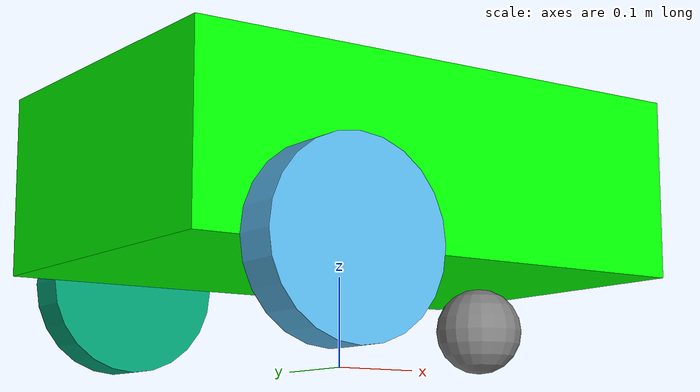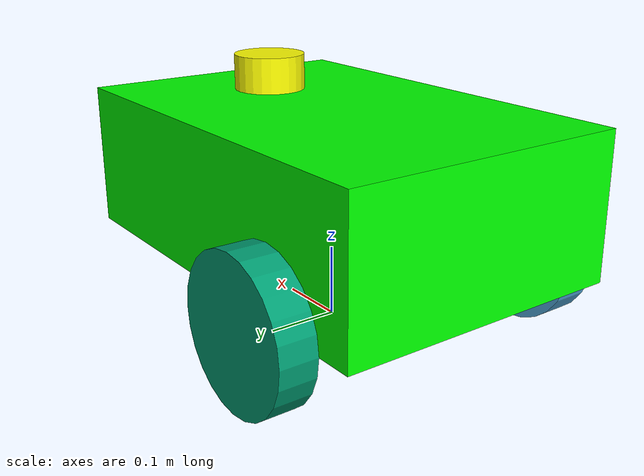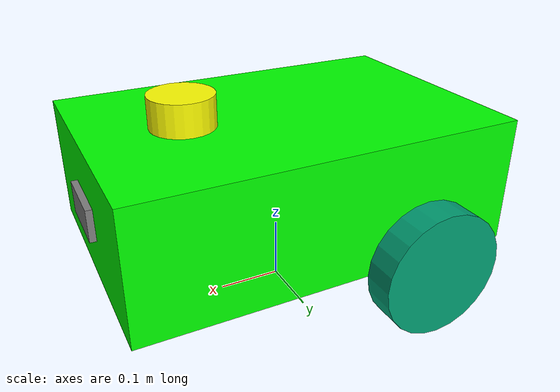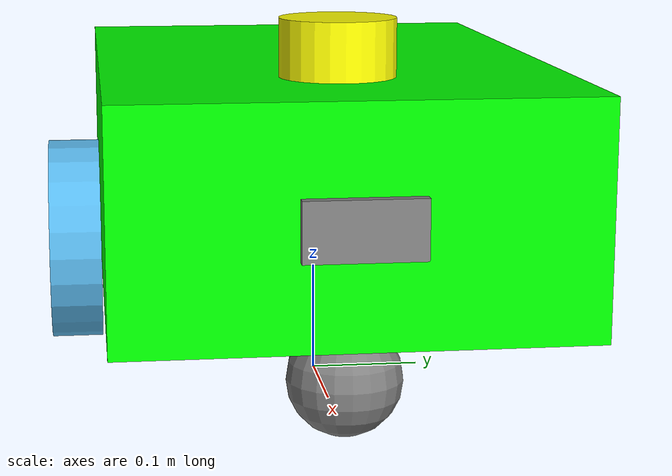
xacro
<?xml version="1.0"?>
<robot name="my_robot" xmlns:xacro="http://www.ros.org/wiki/xacro">

    <xacro:include filename="common_properties.xacro" />
    <xacro:include filename="mobile_base.xacro" />
    <xacro:include filename="mobile_base_gazebo.xacro" />
    <xacro:include filename="camera.xacro" />
    <xacro:include filename="lidar.xacro" />

</robot>

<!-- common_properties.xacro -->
<robot xmlns:xacro="http://www.ros.org/wiki/xacro">

    <material name="green">
        <color rgba="0 1 0 1" />
    </material>
    <material name="grey">
        <color rgba="0.5 0.5 0.5" />
    </material>
    <material name="orange">
        <color rgba="1 0.6 0 1" />
    </material>
    <material name="yellow">
        <color rgba="1 1 0 1" />
    </material>

    <xacro:macro name="box_inertia" params="m x y z o_xyz o_rpy">
        <inertial>
            <mass value="${m}" />
            <origin xyz="${o_xyz}" rpy="${o_rpy}" />
            <inertia ixx="${m*(y*y+z*z)/12}" ixy="0" ixz="0"
                     iyy="${m*(x*x+z*z)/12}" iyz="0"
                     izz="${m*(y*y+x*x)/12}" />
        </inertial>
    </xacro:macro>

    <xacro:macro name="cylinder_inertia" params="m r h o_xyz o_rpy">
        <inertial>
            <mass value="${m}" />
            <origin xyz="${o_xyz}" rpy="${o_rpy}" />
            <inertia ixx="${m*(3*r*r+h*h)/12}" ixy="0" ixz="0"
                     iyy="${m*(3*r*r+h*h)/12}" iyz="0"
                     izz="${m*r*r/2}" />
        </inertial>
    </xacro:macro>

    <xacro:macro name="sphere_inertia" params="m r o_xyz o_rpy">
        <inertial>
            <mass value="${m}" />
            <origin xyz="${o_xyz}" rpy="${o_rpy}" />
            <inertia ixx="${0.4*m*r*r}" ixy="0" ixz="0"
                     iyy="${0.4*m*r*r}" iyz="0"
                     izz="${0.4*m*r*r}" />
        </inertial>
    </xacro:macro>

</robot>

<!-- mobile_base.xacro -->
<robot xmlns:xacro="http://www.ros.org/wiki/xacro">
    <xacro:property name="base_length" value="0.6" />
    <xacro:property name="base_width" value="0.4" />
    <xacro:property name="base_height" value="0.2" />
    <xacro:property name="wheel_radius" value="0.1" />
    <xacro:property name="wheel_length" value="0.05" />

    <xacro:macro name="wheel_link" params="prefix">
        <link name="${prefix}_wheel_link">
            <visual>
                <geometry>
                    <cylinder radius="${wheel_radius}" length="${wheel_length}" />
                </geometry>
                <origin xyz="0 0 0" rpy="${pi / 2.0} 0 0" />
            </visual>
            <collision>
                <geometry>
                    <sphere radius="${wheel_radius}"/>
                </geometry>
                <origin xyz="0 0 0" rpy="0 0 0" />
            </collision>
            <xacro:cylinder_inertia m="1.0" r="${wheel_radius}" h="${wheel_length}"
                                    o_xyz="0 0 0" o_rpy="${pi / 2.0} 0 0" />
        </link>
    </xacro:macro>

    <link name="base_link">
        <visual>
            <geometry>
                <box size="${base_length} ${base_width} ${base_height}" />
            </geometry>
            <origin xyz="0 0 ${base_height / 2.0}" rpy="0 0 0" />
            <material name="green" />
        </visual>
        <collision>
            <geometry>
                <box size="${base_length} ${base_width} ${base_height}" />
            </geometry>
            <origin xyz="0 0 ${base_height / 2.0}" rpy="0 0 0" />
        </collision>
        <xacro:box_inertia m="5.0" x="${base_length}" y="${base_width}" z="${base_height}"
                           o_xyz="0 0 ${base_height / 2.0}" o_rpy="0 0 0" />
    </link>

    <xacro:wheel_link prefix="right" />
    <xacro:wheel_link prefix="left" />

    <link name="caster_wheel">
        <visual>
            <geometry>
                <sphere radius="${wheel_radius / 2.0}" />
            </geometry>
            <origin xyz="0 0 0" rpy="0 0 0" />
            <material name="grey" />
        </visual>
        <collision>
            <geometry>
                <sphere radius="${wheel_radius / 2.0}" />
            </geometry>
            <origin xyz="0 0 0" rpy="0 0 0" />
        </collision>
        <xacro:sphere_inertia m="0.5" r="${wheel_radius/2}" o_xyz="0 0 0" o_rpy="0 0 0" />
    </link>

    <link name="base_footprint" />

    <joint name="base_right_wheel_joint" type="continuous">
        <parent link="base_link" />
        <child link="right_wheel_link" />
        <origin xyz="${-base_length / 4.0} ${-(base_width + wheel_length) / 2.0} 0" rpy="0 0 0"/>
        <axis xyz="0 1 0" />
    </joint>
    <joint name="base_left_wheel_joint" type="continuous">
        <parent link="base_link" />
        <child link="left_wheel_link" />
        <origin xyz="${-base_length / 4.0} ${(base_width + wheel_length) / 2.0} 0" rpy="0 0 0"/>
        <axis xyz="0 1 0" />
    </joint>
    <joint name="base_caster_wheel_joint" type="fixed">
        <parent link="base_link" />
        <child link="caster_wheel" />
        <origin xyz="${base_length / 3.0} 0 ${-wheel_radius / 2.0}" rpy="0 0 0"/>
    </joint>
    <joint name="base_joint" type="fixed">
        <parent link="base_footprint" />
        <child link="base_link" />
        <origin xyz="0 0 ${wheel_radius}" />
    </joint>

</robot>

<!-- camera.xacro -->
<robot xmlns:xacro="http://www.ros.org/wiki/xacro">

    <xacro:property name="camera_length" value="0.01" />
    <xacro:property name="camera_width" value="0.1" />
    <xacro:property name="camera_height" value="0.05" />

    <link name="camera_link">
        <visual>
            <geometry>
                <box size="${camera_length} ${camera_width} ${camera_height}" />
            </geometry>
            <material name="grey" />
        </visual>
        <collision>
            <geometry>
                <box size="${camera_length} ${camera_width} ${camera_height}" />
            </geometry>
        </collision>
        <xacro:box_inertia m="0.1" x="${camera_length}" y="${camera_width}" z="${camera_height}"
                           o_xyz="0 0 0" o_rpy="0 0 0"/>
    </link>

    <joint name="base_camera_joint" type="fixed">
        <parent link="base_link" />
        <child link="camera_link" />
        <origin xyz="${(base_length + camera_length) / 2} 0 ${base_height/2}" rpy="0 0 0" />
    </joint>

    <link name="camera_link_optical" />

    <joint name="camera_optical_joint" type="fixed">
        <origin xyz="0 0 0" rpy="${-pi/2} 0 ${-pi/2}"/>
        <parent link="camera_link"/>
        <child link="camera_link_optical"/>
    </joint>

    <gazebo reference="camera_link">
        <sensor name="camera" type="camera">
            <camera>
                <horizontal_fov>1.3962634</horizontal_fov>
                <image>
                    <width>640</width>
                    <height>480</height>
                    <format>R8G8B8</format>
                </image>
                <clip>
                    <near>0.1</near>
                    <far>15</far>
                </clip>
                <noise>
                    <type>gaussian</type>
                    <mean>0.0</mean>
                    <stddev>0.007</stddev>
                </noise>
                <optical_frame_id>camera_link_optical</optical_frame_id>
                <camera_info_topic>camera/camera_info</camera_info_topic>
            </camera>
            <always_on>1</always_on>
            <update_rate>20</update_rate>
            <visualize>true</visualize>
            <topic>camera/image_raw</topic>
        </sensor>
    </gazebo>

</robot>

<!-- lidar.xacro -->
<robot name="my_robot" xmlns:xacro="http://www.ros.org/wiki/xacro">
    <link name="laser_link">
        <visual>
            <geometry>
                <cylinder radius="0.05" length="0.05" />
            </geometry>
            <origin xyz="0 0 0.025" rpy="0 0 0" />
            <material name="yellow" />
        </visual>
        <collision>
            <geometry>
                <cylinder radius="0.05" length="0.05" />
            </geometry>
            <origin xyz="0 0 0.025" rpy="0 0 0" />
        </collision>
        <xacro:cylinder_inertia m="0.3" r="0.05" h="0.05" o_xyz="0 0 0.025" o_rpy="0 0 0" />
    </link>

    <joint name="laser_joint" type="fixed">
        <parent link="base_link" />
        <child link="laser_link" />
        <origin xyz="${base_length / 4} 0 ${base_height}" rpy="0 0 0" />
    </joint>

     <gazebo reference="laser_link">
        <sensor name="lidar_sensor" type="gpu_lidar">
            <pose> 0 0 0 0 0 0 </pose>
            <visualize>true</visualize>
            <update_rate>2</update_rate>
            <lidar>
                <scan>
                    <horizontal>
                        <samples>360</samples>
                        <min_angle>-3.14</min_angle>
                        <max_angle>3.14</max_angle>
                    </horizontal>
                </scan>
                <range>
                    <min>0.3</min>
                    <max>12</max>
                </range>
            </lidar>
            <topic>scan</topic>
            <always_on>1</always_on>
            <gz_frame_id>laser_link</gz_frame_id>
        </sensor>
    </gazebo>

</robot>
